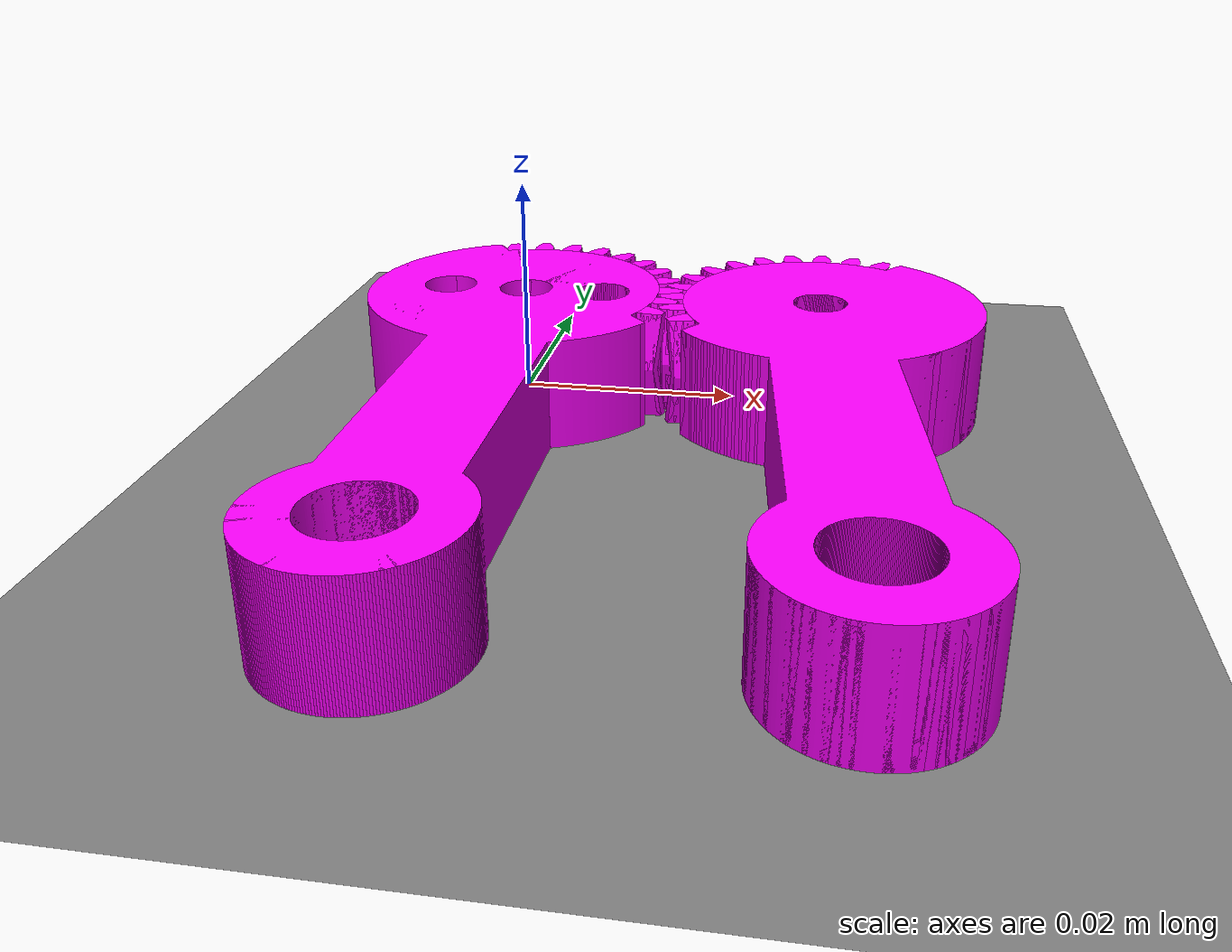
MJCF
<mujoco>
    <compiler meshdir="meshes"/>
    <default>
        <mesh scale="0.001 0.001 0.001" />

        <default class="passive">
            <geom rgba="1 0 1 1" mass="0" />
        </default>
        <default class="active">
            <geom rgba="1 0 1 1" mass="0" />
        </default>
    </default>
    <asset>
        <!--Engrenagens-->
        <!--passive_gear-->
        <mesh name="passive_gear" file="engrenagens/passiva/passive_gear.stl"/>

        <!--Collisions meshes passive gear-->
        <mesh name="collision_passive_gear" file="engrenagens/passiva/collisions/collision_passive_gear.stl" />
        <mesh name="collision_passive_gear_t1" file="engrenagens/passiva/collisions/collision_passive_gear_t1.stl" />
        <mesh name="collision_passive_gear_t2"  file="engrenagens/passiva/collisions/collision_passive_gear_t2.stl" />
        <mesh name="collision_passive_gear_t3" file="engrenagens/passiva/collisions/collision_passive_gear_t3.stl" />
        <mesh name="collision_passive_gear_t4" file="engrenagens/passiva/collisions/collision_passive_gear_t4.stl" />
        <mesh name="collision_passive_gear_t5" file="engrenagens/passiva/collisions/collision_passive_gear_t5.stl" />
        <mesh name="collision_passive_gear_t6" file="engrenagens/passiva/collisions/collision_passive_gear_t6.stl" />
        <mesh name="collision_passive_gear_t7" file="engrenagens/passiva/collisions/collision_passive_gear_t7.stl" />
        <mesh name="collision_passive_gear_t8" file="engrenagens/passiva/collisions/collision_passive_gear_t8.stl" />
        <mesh name="collision_passive_gear_t9" file="engrenagens/passiva/collisions/collision_passive_gear_t9.stl" />
        <mesh name="collision_passive_gear_t10" file="engrenagens/passiva/collisions/collision_passive_gear_t10.stl" />
        <mesh name="collision_passive_gear_t11" file="engrenagens/passiva/collisions/collision_passive_gear_t11.stl" />
        <mesh name="collision_passive_gear_t12" file="engrenagens/passiva/collisions/collision_passive_gear_t12.stl" />

        <!--active_gear-->
        <mesh name="active_gear"  file="engrenagens/ativa/active_gear.stl" />

                <!--Collisions meshes active gear-->
        <mesh name="collision_active_gear" file="engrenagens/ativa/collisions/collision_active_gear.stl" />
        <mesh name="collision_active_gear_t1" file="engrenagens/ativa/collisions/collision_active_gear_t1.stl" />
        <mesh name="collision_active_gear_t2" file="engrenagens/ativa/collisions/collision_active_gear_t2.stl" />
        <mesh name="collision_active_gear_t3" file="engrenagens/ativa/collisions/collision_active_gear_t3.stl" />
        <mesh name="collision_active_gear_t4" file="engrenagens/ativa/collisions/collision_active_gear_t4.stl" />
        <mesh name="collision_active_gear_t5" file="engrenagens/ativa/collisions/collision_active_gear_t5.stl" />
        <mesh name="collision_active_gear_t6" file="engrenagens/ativa/collisions/collision_active_gear_t6.stl" />
        <mesh name="collision_active_gear_t7" file="engrenagens/ativa/collisions/collision_active_gear_t7.stl" />
        <mesh name="collision_active_gear_t8" file="engrenagens/ativa/collisions/collision_active_gear_t8.stl" />
        <mesh name="collision_active_gear_t9" file="engrenagens/ativa/collisions/collision_active_gear_t9.stl" />
        <mesh name="collision_active_gear_t10" file="engrenagens/ativa/collisions/collision_active_gear_t10.stl" />
        <mesh name="collision_active_gear_t11" file="engrenagens/ativa/collisions/collision_active_gear_t11.stl" />

        <mesh name="active_pivot" file="engrenagens/ativa/active_pivot.stl" />
    </asset>

    <worldbody>
        <!--Plano-->
        <body>
            <geom type="plane" size="1 1 0.0001" />
        </body>

        <!--Gripper-->
        <body name="gripper" >
            <body name="active_gear_body">
                <!--adiciona a engrenagem ativa conectada ao servo-->
                <geom type="mesh" class="active" mass="0.1" mesh="active_gear" contype="1" conaffinity="1" />

                <joint name="active_gear_joint" type="hinge"  pos="0 0 0" axis="0 0 1" damping="0.01" range="-40 40" />

                <geom type="mesh" class="active" mass="0" mesh="collision_active_gear" />
                <geom type="mesh" class="active" mass="0" mesh="collision_active_gear_t1" />
                <geom type="mesh" class="active" mass="0" mesh="collision_active_gear_t2" />
                <geom type="mesh" class="active" mass="0" mesh="collision_active_gear_t3" />
                <geom type="mesh" class="active" mass="0" mesh="collision_active_gear_t4" />
                <geom type="mesh" class="active" mass="0" mesh="collision_active_gear_t5" />
                <geom type="mesh" class="active" mass="0" mesh="collision_active_gear_t6" />
                <geom type="mesh" class="active" mass="0" mesh="collision_active_gear_t7" />
                <geom type="mesh" class="active" mass="0" mesh="collision_active_gear_t8" />
                <geom type="mesh" class="active" mass="0" mesh="collision_active_gear_t9" />
                <geom type="mesh" class="active" mass="0" mesh="collision_active_gear_t10" />
                <geom type="mesh" class="active" mass="0" mesh="collision_active_gear_t11" />

            </body>
            <!--Adiciona a engrenagem passiva-->
            <body>
                <geom type="mesh" class="passive" mass="0.1" mesh="passive_gear" contype="1" conaffinity="1" />

                <geom type="mesh" class="passive" mass="0" mesh="collision_passive_gear" />
                <geom type="mesh" class="passive" mass="0" mesh="collision_passive_gear_t1" />
                <geom type="mesh" class="passive" mass="0" mesh="collision_passive_gear_t2" />
                <geom type="mesh" class="passive" mass="0" mesh="collision_passive_gear_t3" />
                <geom type="mesh" class="passive" mass="0" mesh="collision_passive_gear_t4" />
                <geom type="mesh" class="passive" mass="0" mesh="collision_passive_gear_t5" />
                <geom type="mesh" class="passive" mass="0" mesh="collision_passive_gear_t6" />
                <geom type="mesh" class="passive" mass="0" mesh="collision_passive_gear_t7" />
                <geom type="mesh" class="passive" mass="0" mesh="collision_passive_gear_t8" />
                <geom type="mesh" class="passive" mass="0" mesh="collision_passive_gear_t9" />
                <geom type="mesh" class="passive" mass="0" mesh="collision_passive_gear_t10" />
                <geom type="mesh" class="passive" mass="0" mesh="collision_passive_gear_t11" />
                <geom type="mesh" class="passive" mass="0" mesh="collision_passive_gear_t12" />

                <joint type="hinge" name="passive_gear_joint" pos="0.027999 0 0" damping="0.01" />
            </body>
        </body>

    </worldbody>
</mujoco>
